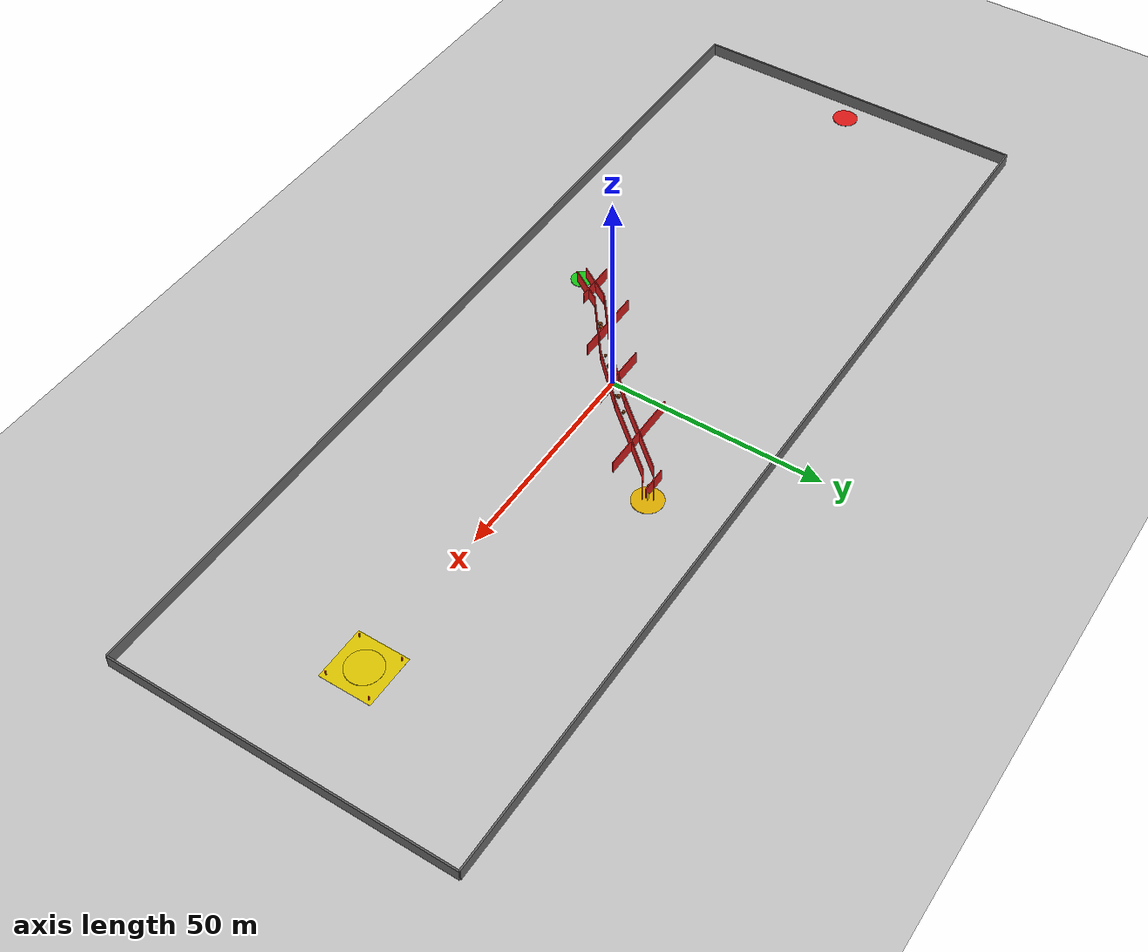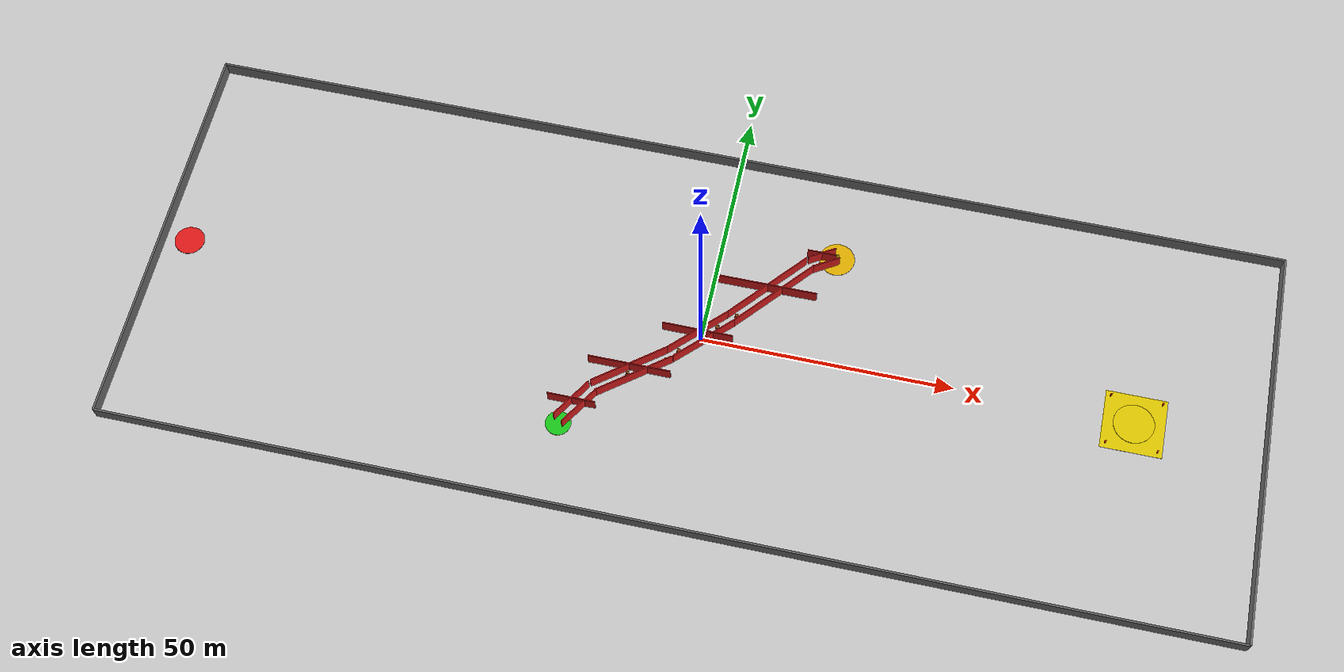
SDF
<sdf version="1.6">
 <world name="navitas_arena">
  <physics type="ode">
   <max_step_size>0.001</max_step_size>
   <real_time_factor>1</real_time_factor>
   <real_time_update_rate>1000</real_time_update_rate>
   <gravity>0 0 -9.8</gravity>
  </physics>
  <scene><ambient>0.4 0.4 0.4 1</ambient><background>0.7 0.7 0.7 1</background><shadows>true</shadows></scene>
  <light name="sun" type="directional">
   <pose>0 0 100 0 -0 0</pose>
   <diffuse>0.8 0.8 0.8 1</diffuse>
   <specular>0.1 0.1 0.1 1</specular>
   <attenuation>
    <range>1000</range>
    <constant>0.9</constant>
    <linear>0.01</linear>
    <quadratic>0.001</quadratic>
   </attenuation>
   <direction>-0.5 0.1 -0.9</direction>
  </light>
  <model name="ground_plane">
   <static>true</static>
   <link name="link">
    <collision name="collision">
     <geometry><plane><normal>0 0 1</normal><size>300 300</size></plane></geometry>
     <surface><friction><ode><mu>0.8</mu><mu2>0.8</mu2></ode></friction></surface>
    </collision>
    <visual name="visual">
     <cast_shadows>false</cast_shadows>
     <geometry><plane><normal>0 0 1</normal><size>300 300</size></plane></geometry>
     <material>
      <script><uri>file://media/materials/scripts/gazebo.material</uri><name>Gazebo/Grey</name></script>
     </material>
    </visual>
   </link>
  </model>
  <model name="boundary_N">
   <static>true</static>
   <pose>0 40.0 1.5 0 0 0</pose>
   <link name="link">
    <collision name="col"><geometry><box><size>220.0 0.4 3.0</size></box></geometry></collision>
    <visual name="vis">
     <geometry><box><size>220.0 0.4 3.0</size></box></geometry>
     <material><ambient>0.4 0.4 0.4 1</ambient><diffuse>0.4 0.4 0.4 1</diffuse></material>
    </visual>
   </link>
  </model>
  <model name="boundary_S">
   <static>true</static>
   <pose>0 -40.0 1.5 0 0 0</pose>
   <link name="link">
    <collision name="col"><geometry><box><size>220.0 0.4 3.0</size></box></geometry></collision>
    <visual name="vis">
     <geometry><box><size>220.0 0.4 3.0</size></box></geometry>
     <material><ambient>0.4 0.4 0.4 1</ambient><diffuse>0.4 0.4 0.4 1</diffuse></material>
    </visual>
   </link>
  </model>
  <model name="boundary_W">
   <static>true</static>
   <pose>-110.0 0 1.5 0 0 0</pose>
   <link name="link">
    <collision name="col"><geometry><box><size>0.4 80.0 3.0</size></box></geometry></collision>
    <visual name="vis">
     <geometry><box><size>0.4 80.0 3.0</size></box></geometry>
     <material><ambient>0.4 0.4 0.4 1</ambient><diffuse>0.4 0.4 0.4 1</diffuse></material>
    </visual>
   </link>
  </model>
  <model name="boundary_E">
   <static>true</static>
   <pose>110.0 0 1.5 0 0 0</pose>
   <link name="link">
    <collision name="col"><geometry><box><size>0.4 80.0 3.0</size></box></geometry></collision>
    <visual name="vis">
     <geometry><box><size>0.4 80.0 3.0</size></box></geometry>
     <material><ambient>0.4 0.4 0.4 1</ambient><diffuse>0.4 0.4 0.4 1</diffuse></material>
    </visual>
   </link>
  </model>
  <model name="iha_fb_marker">
   <static>true</static>
   <pose>-105.0 0.0 0.05 0 0 0</pose>
   <link name="link">
    <collision name="col">
     <geometry><cylinder><radius>3.0</radius><length>0.1</length></cylinder></geometry>
    </collision>
    <visual name="vis">
     <geometry><cylinder><radius>3.0</radius><length>0.1</length></cylinder></geometry>
     <material><ambient>0.9 0.1 0.1 1</ambient><diffuse>0.9 0.1 0.1 1</diffuse></material>
    </visual>
   </link>
  </model>
  <model name="iha_ib_marker">
   <static>true</static>
   <pose>85.0 0.0 0.05 0 0 0</pose>
   <link name="link">
    <collision name="col">
     <geometry><cylinder><radius>4.0</radius><length>0.1</length></cylinder></geometry>
    </collision>
    <visual name="vis">
     <geometry><cylinder><radius>4.0</radius><length>0.1</length></cylinder></geometry>
     <material><ambient>0.9 0.8 0.0 1</ambient><diffuse>0.9 0.8 0.0 1</diffuse></material>
    </visual>
   </link>
  </model>
  <model name="ika_kb_marker">
   <static>true</static>
   <pose>-23.0 -23.0 0.05 0 0 0</pose>
   <link name="link">
    <collision name="col">
     <geometry><cylinder><radius>2.5</radius><length>0.1</length></cylinder></geometry>
    </collision>
    <visual name="vis">
     <geometry><cylinder><radius>2.5</radius><length>0.1</length></cylinder></geometry>
     <material><ambient>0.1 0.8 0.1 1</ambient><diffuse>0.1 0.8 0.1 1</diffuse></material>
    </visual>
   </link>
  </model>
  <model name="hb_marker">
   <static>true</static>
   <pose>23.0 23.0 0.05 0 0 0</pose>
   <link name="link">
    <collision name="col">
     <geometry><cylinder><radius>3.5</radius><length>0.1</length></cylinder></geometry>
    </collision>
    <visual name="vis">
     <geometry><cylinder><radius>3.5</radius><length>0.1</length></cylinder></geometry>
     <material><ambient>0.9 0.7 0.0 1</ambient><diffuse>0.9 0.7 0.0 1</diffuse></material>
    </visual>
   </link>
  </model>
  <model name="hb_sign">
   <static>true</static>
   <pose>23.0 23.0 1.2 0 0 0</pose>
   <link name="link">
    <collision name="col"><geometry><box><size>0.5 0.05 2.0</size></box></geometry></collision>
    <visual name="vis">
     <geometry><box><size>0.5 0.05 2.0</size></box></geometry>
     <material><ambient>0.9 0.9 0.0 1</ambient><diffuse>0.9 0.9 0.0 1</diffuse></material>
    </visual>
   </link>
  </model>
  <model name="landing_ground">
   <static>true</static>
   <pose>85.0 0.0 0.01 0 0 0</pose>
   <link name="link">
    <collision name="col"><geometry><box><size>12.0 12.0 0.02</size></box></geometry></collision>
    <visual name="vis">
     <geometry><box><size>12.0 12.0 0.02</size></box></geometry>
     <material><ambient>0.9 0.8 0.0 1</ambient><diffuse>0.9 0.8 0.0 1</diffuse></material>
    </visual>
   </link>
  </model>
  <model name="landing_cone_0">
   <static>true</static>
   <pose>80.0 -5.0 0.5 0 0 0</pose>
   <link name="link">
    <collision name="col">
     <geometry><cylinder><radius>0.15</radius><length>1.0</length></cylinder></geometry>
    </collision>
    <visual name="vis">
     <geometry><cylinder><radius>0.15</radius><length>1.0</length></cylinder></geometry>
     <material><ambient>1.0 0.2 0.0 1</ambient><diffuse>1.0 0.2 0.0 1</diffuse></material>
    </visual>
   </link>
  </model>
  <model name="landing_cone_1">
   <static>true</static>
   <pose>80.0 5.0 0.5 0 0 0</pose>
   <link name="link">
    <collision name="col">
     <geometry><cylinder><radius>0.15</radius><length>1.0</length></cylinder></geometry>
    </collision>
    <visual name="vis">
     <geometry><cylinder><radius>0.15</radius><length>1.0</length></cylinder></geometry>
     <material><ambient>1.0 0.2 0.0 1</ambient><diffuse>1.0 0.2 0.0 1</diffuse></material>
    </visual>
   </link>
  </model>
  <model name="landing_cone_2">
   <static>true</static>
   <pose>90.0 -5.0 0.5 0 0 0</pose>
   <link name="link">
    <collision name="col">
     <geometry><cylinder><radius>0.15</radius><length>1.0</length></cylinder></geometry>
    </collision>
    <visual name="vis">
     <geometry><cylinder><radius>0.15</radius><length>1.0</length></cylinder></geometry>
     <material><ambient>1.0 0.2 0.0 1</ambient><diffuse>1.0 0.2 0.0 1</diffuse></material>
    </visual>
   </link>
  </model>
  <model name="landing_cone_3">
   <static>true</static>
   <pose>90.0 5.0 0.5 0 0 0</pose>
   <link name="link">
    <collision name="col">
     <geometry><cylinder><radius>0.15</radius><length>1.0</length></cylinder></geometry>
    </collision>
    <visual name="vis">
     <geometry><cylinder><radius>0.15</radius><length>1.0</length></cylinder></geometry>
     <material><ambient>1.0 0.2 0.0 1</ambient><diffuse>1.0 0.2 0.0 1</diffuse></material>
    </visual>
   </link>
  </model>
  <model name="ika_wall_L_0">
   <static>true</static>
   <pose>-21.432798134405598 -18.417001165996503 1.5 0 0 0</pose>
   <link name="link">
    <collision name="col"><geometry><box><size>9.433981132056603 0.2 3.0</size></box></geometry></collision>
    <visual name="vis">
     <geometry><box><size>9.433981132056603 0.2 3.0</size></box></geometry>
     <material><ambient>0.8 0.1 0.1 1</ambient><diffuse>0.8 0.1 0.1 1</diffuse></material>
    </visual>
   </link>
  </model>
  <model name="ika_wall_R_0">
   <static>true</static>
   <pose>-19.567201865594402 -19.582998834003497 1.5 0 0 1.0121970114513341</pose>
   <link name="link">
    <collision name="col"><geometry><box><size>9.433981132056603 0.2 3.0</size></box></geometry></collision>
    <visual name="vis">
     <geometry><box><size>9.433981132056603 0.2 3.0</size></box></geometry>
     <material><ambient>0.8 0.1 0.1 1</ambient><diffuse>0.8 0.1 0.1 1</diffuse></material>
    </visual>
   </link>
  </model>
  <model name="ika_wall_L2_0">
   <static>true</static>
   <pose>-21.432798134405598 -18.417001165996503 1.5 0 0 1.0121970114513341</pose>
   <link name="link">
    <collision name="col"><geometry><box><size>9.433981132056603 0.2 3.0</size></box></geometry></collision>
    <visual name="vis">
     <geometry><box><size>9.433981132056603 0.2 3.0</size></box></geometry>
     <material><ambient>0.8 0.1 0.1 1</ambient><diffuse>0.8 0.1 0.1 1</diffuse></material>
    </visual>
   </link>
  </model>
  <model name="ika_wall_L_1">
   <static>true</static>
   <pose>-12.170681836934662 -9.12811361198494 1.5 0 0 0</pose>
   <link name="link">
    <collision name="col"><geometry><box><size>16.401219466856727 0.2 3.0</size></box></geometry></collision>
    <visual name="vis">
     <geometry><box><size>16.401219466856727 0.2 3.0</size></box></geometry>
     <material><ambient>0.8 0.1 0.1 1</ambient><diffuse>0.8 0.1 0.1 1</diffuse></material>
    </visual>
   </link>
  </model>
  <model name="ika_wall_R_1">
   <static>true</static>
   <pose>-10.829318163065338 -10.87188638801506 1.5 0 0 0.6556956262415362</pose>
   <link name="link">
    <collision name="col"><geometry><box><size>16.401219466856727 0.2 3.0</size></box></geometry></collision>
    <visual name="vis">
     <geometry><box><size>16.401219466856727 0.2 3.0</size></box></geometry>
     <material><ambient>0.8 0.1 0.1 1</ambient><diffuse>0.8 0.1 0.1 1</diffuse></material>
    </visual>
   </link>
  </model>
  <model name="ika_wall_L2_1">
   <static>true</static>
   <pose>-12.170681836934662 -9.12811361198494 1.5 0 0 0.6556956262415362</pose>
   <link name="link">
    <collision name="col"><geometry><box><size>16.401219466856727 0.2 3.0</size></box></geometry></collision>
    <visual name="vis">
     <geometry><box><size>16.401219466856727 0.2 3.0</size></box></geometry>
     <material><ambient>0.8 0.1 0.1 1</ambient><diffuse>0.8 0.1 0.1 1</diffuse></material>
    </visual>
   </link>
  </model>
  <model name="ika_wall_L_2">
   <static>true</static>
   <pose>-0.7778174593052023 0.7778174593052024 1.5 0 0 0</pose>
   <link name="link">
    <collision name="col"><geometry><box><size>14.142135623730951 0.2 3.0</size></box></geometry></collision>
    <visual name="vis">
     <geometry><box><size>14.142135623730951 0.2 3.0</size></box></geometry>
     <material><ambient>0.8 0.1 0.1 1</ambient><diffuse>0.8 0.1 0.1 1</diffuse></material>
    </visual>
   </link>
  </model>
  <model name="ika_wall_R_2">
   <static>true</static>
   <pose>0.7778174593052023 -0.7778174593052024 1.5 0 0 0.7853981633974483</pose>
   <link name="link">
    <collision name="col"><geometry><box><size>14.142135623730951 0.2 3.0</size></box></geometry></collision>
    <visual name="vis">
     <geometry><box><size>14.142135623730951 0.2 3.0</size></box></geometry>
     <material><ambient>0.8 0.1 0.1 1</ambient><diffuse>0.8 0.1 0.1 1</diffuse></material>
    </visual>
   </link>
  </model>
  <model name="ika_wall_L2_2">
   <static>true</static>
   <pose>-0.7778174593052023 0.7778174593052024 1.5 0 0 0.7853981633974483</pose>
   <link name="link">
    <collision name="col"><geometry><box><size>14.142135623730951 0.2 3.0</size></box></geometry></collision>
    <visual name="vis">
     <geometry><box><size>14.142135623730951 0.2 3.0</size></box></geometry>
     <material><ambient>0.8 0.1 0.1 1</ambient><diffuse>0.8 0.1 0.1 1</diffuse></material>
    </visual>
   </link>
  </model>
  <model name="ika_wall_L_3">
   <static>true</static>
   <pose>10.6687420089312 13.220423592259626 1.5 0 0 0</pose>
   <link name="link">
    <collision name="col"><geometry><box><size>19.849433241279208 0.2 3.0</size></box></geometry></collision>
    <visual name="vis">
     <geometry><box><size>19.849433241279208 0.2 3.0</size></box></geometry>
     <material><ambient>0.8 0.1 0.1 1</ambient><diffuse>0.8 0.1 0.1 1</diffuse></material>
    </visual>
   </link>
  </model>
  <model name="ika_wall_R_3">
   <static>true</static>
   <pose>12.3312579910688 11.779576407740374 1.5 0 0 0.8567056281827387</pose>
   <link name="link">
    <collision name="col"><geometry><box><size>19.849433241279208 0.2 3.0</size></box></geometry></collision>
    <visual name="vis">
     <geometry><box><size>19.849433241279208 0.2 3.0</size></box></geometry>
     <material><ambient>0.8 0.1 0.1 1</ambient><diffuse>0.8 0.1 0.1 1</diffuse></material>
    </visual>
   </link>
  </model>
  <model name="ika_wall_L2_3">
   <static>true</static>
   <pose>10.6687420089312 13.220423592259626 1.5 0 0 0.8567056281827387</pose>
   <link name="link">
    <collision name="col"><geometry><box><size>19.849433241279208 0.2 3.0</size></box></geometry></collision>
    <visual name="vis">
     <geometry><box><size>19.849433241279208 0.2 3.0</size></box></geometry>
     <material><ambient>0.8 0.1 0.1 1</ambient><diffuse>0.8 0.1 0.1 1</diffuse></material>
    </visual>
   </link>
  </model>
  <model name="ika_wall_L_4">
   <static>true</static>
   <pose>19.93405466902972 22.4432422182838 1.5 0 0 0</pose>
   <link name="link">
    <collision name="col"><geometry><box><size>5.830951894845301 0.2 3.0</size></box></geometry></collision>
    <visual name="vis">
     <geometry><box><size>5.830951894845301 0.2 3.0</size></box></geometry>
     <material><ambient>0.8 0.1 0.1 1</ambient><diffuse>0.8 0.1 0.1 1</diffuse></material>
    </visual>
   </link>
  </model>
  <model name="ika_wall_R_4">
   <static>true</static>
   <pose>21.06594533097028 20.5567577817162 1.5 0 0 0.5404195002705842</pose>
   <link name="link">
    <collision name="col"><geometry><box><size>5.830951894845301 0.2 3.0</size></box></geometry></collision>
    <visual name="vis">
     <geometry><box><size>5.830951894845301 0.2 3.0</size></box></geometry>
     <material><ambient>0.8 0.1 0.1 1</ambient><diffuse>0.8 0.1 0.1 1</diffuse></material>
    </visual>
   </link>
  </model>
  <model name="ika_wall_L2_4">
   <static>true</static>
   <pose>19.93405466902972 22.4432422182838 1.5 0 0 0.5404195002705842</pose>
   <link name="link">
    <collision name="col"><geometry><box><size>5.830951894845301 0.2 3.0</size></box></geometry></collision>
    <visual name="vis">
     <geometry><box><size>5.830951894845301 0.2 3.0</size></box></geometry>
     <material><ambient>0.8 0.1 0.1 1</ambient><diffuse>0.8 0.1 0.1 1</diffuse></material>
    </visual>
   </link>
  </model>
  <model name="debris_0">
   <static>true</static>
   <pose>19.83623064636094 21.254812085653054 0.19605254567925826 0 0 0</pose>
   <link name="link">
    <collision name="col">
     <geometry><box><size>0.3921050913585165 0.3921050913585165 0.3921050913585165</size></box></geometry>
    </collision>
    <visual name="vis">
     <geometry><box><size>0.3921050913585165 0.3921050913585165 0.3921050913585165</size></box></geometry>
     <material><ambient>0.55 0.27 0.07 1</ambient><diffuse>0.55 0.27 0.07 1</diffuse></material>
    </visual>
   </link>
  </model>
  <model name="debris_1">
   <static>true</static>
   <pose>2.831045273580277 2.366503456581282 0.22661351640643565 0 0 0</pose>
   <link name="link">
    <collision name="col">
     <geometry><box><size>0.4532270328128713 0.4532270328128713 0.4532270328128713</size></box></geometry>
    </collision>
    <visual name="vis">
     <geometry><box><size>0.4532270328128713 0.4532270328128713 0.4532270328128713</size></box></geometry>
     <material><ambient>0.55 0.27 0.07 1</ambient><diffuse>0.55 0.27 0.07 1</diffuse></material>
    </visual>
   </link>
  </model>
  <model name="debris_2">
   <static>true</static>
   <pose>-5.7924691624032185 -5.6274526617109135 0.23432785827253103 0 0 0</pose>
   <link name="link">
    <collision name="col">
     <geometry><box><size>0.46865571654506205 0.46865571654506205 0.46865571654506205</size></box></geometry>
    </collision>
    <visual name="vis">
     <geometry><box><size>0.46865571654506205 0.46865571654506205 0.46865571654506205</size></box></geometry>
     <material><ambient>0.55 0.27 0.07 1</ambient><diffuse>0.55 0.27 0.07 1</diffuse></material>
    </visual>
   </link>
  </model>
  <model name="debris_3">
   <static>true</static>
   <pose>2.657031363229169 3.195248881299975 0.3144650837601898 0 0 0</pose>
   <link name="link">
    <collision name="col">
     <geometry><box><size>0.6289301675203796 0.6289301675203796 0.6289301675203796</size></box></geometry>
    </collision>
    <visual name="vis">
     <geometry><box><size>0.6289301675203796 0.6289301675203796 0.6289301675203796</size></box></geometry>
     <material><ambient>0.55 0.27 0.07 1</ambient><diffuse>0.55 0.27 0.07 1</diffuse></material>
    </visual>
   </link>
  </model>
  <model name="debris_4">
   <static>true</static>
   <pose>-3.62710567241104 -3.3273636415855004 0.3199934386714026 0 0 0</pose>
   <link name="link">
    <collision name="col">
     <geometry><box><size>0.6399868773428052 0.6399868773428052 0.6399868773428052</size></box></geometry>
    </collision>
    <visual name="vis">
     <geometry><box><size>0.6399868773428052 0.6399868773428052 0.6399868773428052</size></box></geometry>
     <material><ambient>0.55 0.27 0.07 1</ambient><diffuse>0.55 0.27 0.07 1</diffuse></material>
    </visual>
   </link>
  </model>
  <model name="debris_5">
   <static>true</static>
   <pose>5.862411220713742 6.431804277830176 0.2854755040622854 0 0 0</pose>
   <link name="link">
    <collision name="col">
     <geometry><box><size>0.5709510081245708 0.5709510081245708 0.5709510081245708</size></box></geometry>
    </collision>
    <visual name="vis">
     <geometry><box><size>0.5709510081245708 0.5709510081245708 0.5709510081245708</size></box></geometry>
     <material><ambient>0.55 0.27 0.07 1</ambient><diffuse>0.55 0.27 0.07 1</diffuse></material>
    </visual>
   </link>
  </model>
  <model name="debris_6">
   <static>true</static>
   <pose>-11.824121381093276 -10.411491823292387 0.20387984299354542 0 0 0</pose>
   <link name="link">
    <collision name="col">
     <geometry><box><size>0.40775968598709084 0.40775968598709084 0.40775968598709084</size></box></geometry>
    </collision>
    <visual name="vis">
     <geometry><box><size>0.40775968598709084 0.40775968598709084 0.40775968598709084</size></box></geometry>
     <material><ambient>0.55 0.27 0.07 1</ambient><diffuse>0.55 0.27 0.07 1</diffuse></material>
    </visual>
   </link>
  </model>
  <model name="debris_7">
   <static>true</static>
   <pose>-12.361684912615276 -10.891768423681754 0.3366270326589197 0 0 0</pose>
   <link name="link">
    <collision name="col">
     <geometry><box><size>0.6732540653178394 0.6732540653178394 0.6732540653178394</size></box></geometry>
    </collision>
    <visual name="vis">
     <geometry><box><size>0.6732540653178394 0.6732540653178394 0.6732540653178394</size></box></geometry>
     <material><ambient>0.55 0.27 0.07 1</ambient><diffuse>0.55 0.27 0.07 1</diffuse></material>
    </visual>
   </link>
  </model>
  <model name="debris_8">
   <static>true</static>
   <pose>-12.314995401050936 -9.960374248555484 0.2711018256287283 0 0 0</pose>
   <link name="link">
    <collision name="col">
     <geometry><box><size>0.5422036512574566 0.5422036512574566 0.5422036512574566</size></box></geometry>
    </collision>
    <visual name="vis">
     <geometry><box><size>0.5422036512574566 0.5422036512574566 0.5422036512574566</size></box></geometry>
     <material><ambient>0.55 0.27 0.07 1</ambient><diffuse>0.55 0.27 0.07 1</diffuse></material>
    </visual>
   </link>
  </model>
  <model name="debris_9">
   <static>true</static>
   <pose>-13.123465400202964 -11.722074498785537 0.33415284561387365 0 0 0</pose>
   <link name="link">
    <collision name="col">
     <geometry><box><size>0.6683056912277473 0.6683056912277473 0.6683056912277473</size></box></geometry>
    </collision>
    <visual name="vis">
     <geometry><box><size>0.6683056912277473 0.6683056912277473 0.6683056912277473</size></box></geometry>
     <material><ambient>0.55 0.27 0.07 1</ambient><diffuse>0.55 0.27 0.07 1</diffuse></material>
    </visual>
   </link>
  </model>
 </world>
</sdf>
